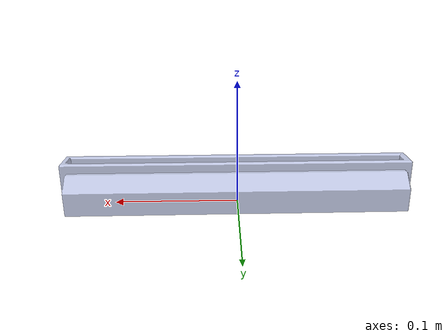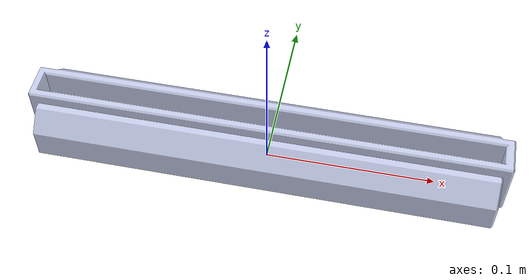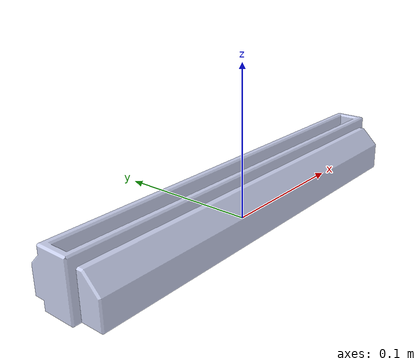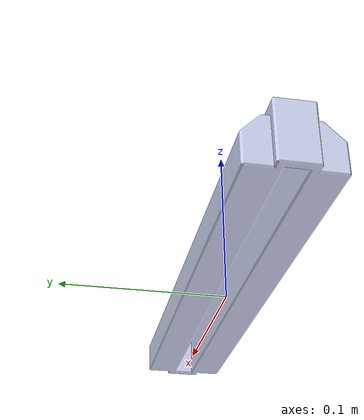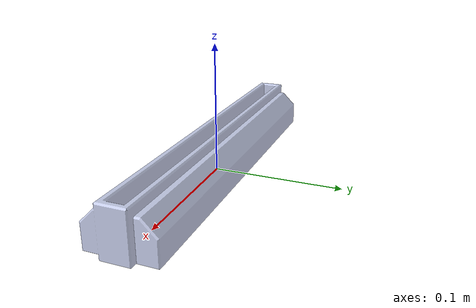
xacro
<?xml version="1.0"?>
<robot name="table_robot" xmlns:xacro="http://www.ros.org/wiki/xacro">
  <xacro:include filename="$(find env_setting)/urdf/Part1_holder.SLDPRT.urdf" />

  <link name="world" />
  <joint name="world_table" type="fixed">
    <origin xyz="0.0 0.0 0.0" rpy="0 0 0" />
    <parent link="world"/>
    <child link="Part1_holder.SLDPRT"/>
  </joint>
</robot>

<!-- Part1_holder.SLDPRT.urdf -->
<robot
  name="Part1_holder.SLDPRT">
  <link
    name="Part1_holder.SLDPRT">
    <inertial>
      <origin
        xyz="2.485E-17 7.08302028712135E-18 0.015037"
        rpy="0 0 0" />
      <mass
        value="0.31786" />
      <inertia
        ixx="0.00010615"
        ixy="4.7361E-19"
        ixz="1.1073E-19"
        iyy="0.0020593"
        iyz="1.19591465118309E-20"
        izz="0.0021112" />
    </inertial>
    <visual>
      <origin
        xyz="0 0 0"
        rpy="0 0 0" />
      <geometry>
        <mesh
          filename="package://env_setting/meshes/Part1_holder.SLDPRT.STL" />
      </geometry>
      <material
        name="">
        <color
          rgba="0.79216 0.81961 0.93333 1" />
      </material>
    </visual>
    <collision>
      <origin
        xyz="0 0 0"
        rpy="0 0 0" />
      <geometry>
        <mesh
          filename="package://env_setting/meshes/Part1_holder.SLDPRT.STL" />
      </geometry>
    </collision>
  </link>
  <gazebo reference="Part1_holder.SLDPRT">
    <kp>1000000.0</kp>
    <kd>1.0</kd>
    <mu1>100000</mu1>
    <mu2>100000</mu2>
    <maxVel>0</maxVel>
    <minDepth>0.0001</minDepth>
  </gazebo>
</robot>
